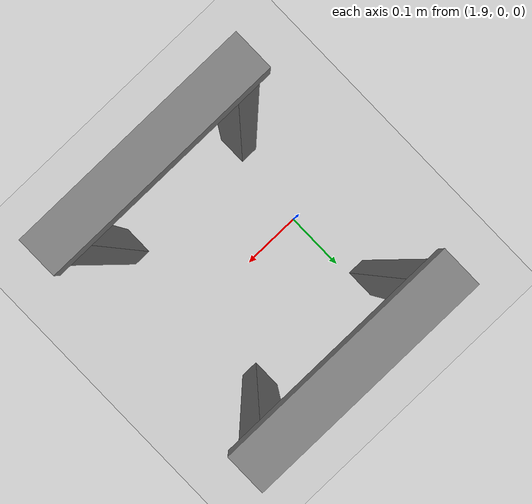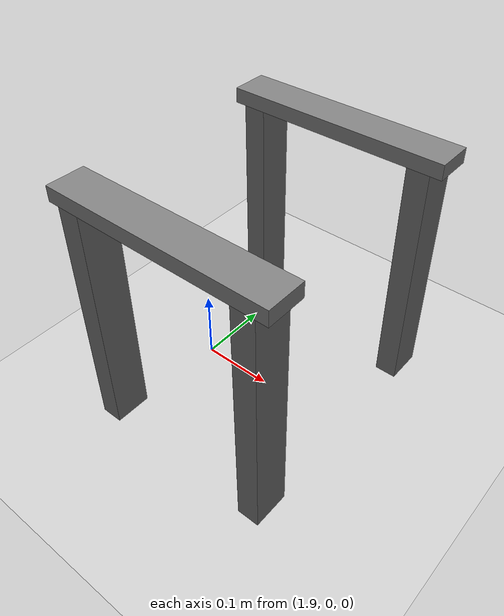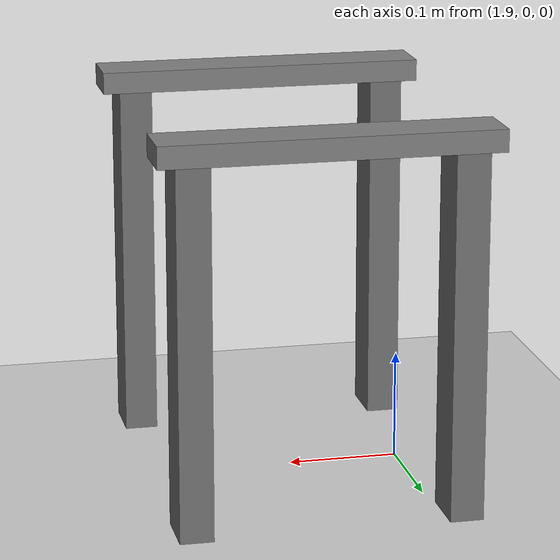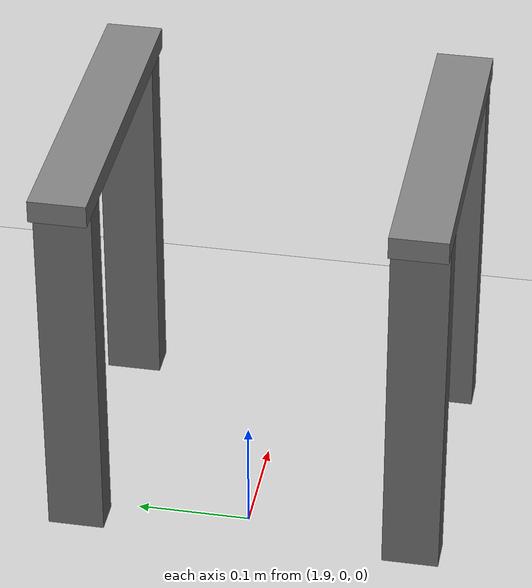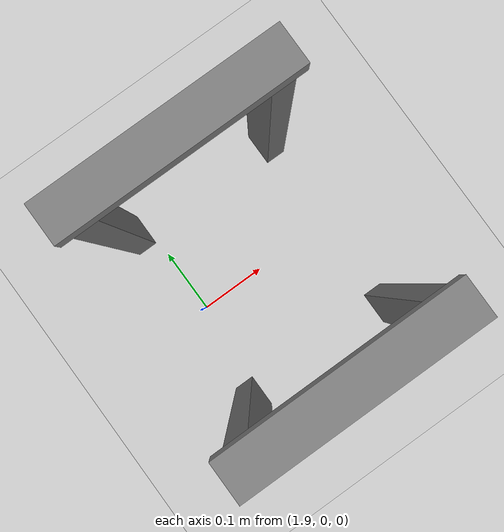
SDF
<?xml version="1.0" encoding="UTF-8"?>
<sdf version="1.9">
  <world name="default">
    <physics type="ode">
      <max_step_size>0.004</max_step_size>
      <real_time_factor>1.0</real_time_factor>
      <real_time_update_rate>250</real_time_update_rate>
    </physics>
    <gravity>0 0 -9.8</gravity>
    <magnetic_field>6e-06 2.3e-05 -4.2e-05</magnetic_field>
    <atmosphere type="adiabatic"/>
    <scene>
      <grid>false</grid>
      <ambient>0.4 0.4 0.4 1</ambient>
      <background>0.7 0.7 0.7 1</background>
      <shadows>true</shadows>
    </scene>
    <model name="ground_plane">
      <static>true</static>
      <link name="link">
        <collision name="collision">
          <geometry>
            <plane>
              <normal>0 0 1</normal>
              <size>1 1</size>
            </plane>
          </geometry>
          <surface>
            <friction>
              <ode/>
            </friction>
            <bounce/>
            <contact/>
          </surface>
        </collision>
        <visual name="visual">
          <geometry>
            <plane>
              <normal>0 0 1</normal>
              <size>500 500</size>
            </plane>
          </geometry>
          <material>
            <ambient>0.8 0.8 0.8 1</ambient>
            <diffuse>0.8 0.8 0.8 1</diffuse>
            <specular>0.8 0.8 0.8 1</specular>
          </material>
        </visual>
        <pose>0 0 0 0 -0 0</pose>
        <inertial>
          <pose>0 0 0 0 -0 0</pose>
          <mass>1</mass>
          <inertia>
            <ixx>1</ixx>
            <ixy>0</ixy>
            <ixz>0</ixz>
            <iyy>1</iyy>
            <iyz>0</iyz>
            <izz>1</izz>
          </inertia>
        </inertial>
        <enable_wind>false</enable_wind>
      </link>
      <pose>0 0 0 0 -0 0</pose>
      <self_collide>false</self_collide>
    </model>

    <!-- Landing stand for UAV: two rails with gap in middle for robot arm -->
    <model name="landing_stand">
      <static>true</static>
      <pose>2 0 0 0 0 0</pose>

      <link name="stand_link">
        <!-- Left rail (y = -0.15) - top horizontal bar -->
        <collision name="left_rail_collision">
          <pose>0 -0.15 0.34 0 0 0</pose>
          <geometry>
            <box><size>0.30 0.05 0.02</size></box>
          </geometry>
        </collision>
        <visual name="left_rail_visual">
          <pose>0 -0.15 0.34 0 0 0</pose>
          <geometry>
            <box><size>0.30 0.05 0.02</size></box>
          </geometry>
          <material>
            <ambient>0.4 0.4 0.4 1</ambient>
            <diffuse>0.5 0.5 0.5 1</diffuse>
            <specular>0.6 0.6 0.6 1</specular>
          </material>
        </visual>

        <!-- Right rail (y = +0.15) - top horizontal bar -->
        <collision name="right_rail_collision">
          <pose>0 0.15 0.34 0 0 0</pose>
          <geometry>
            <box><size>0.30 0.05 0.02</size></box>
          </geometry>
        </collision>
        <visual name="right_rail_visual">
          <pose>0 0.15 0.34 0 0 0</pose>
          <geometry>
            <box><size>0.30 0.05 0.02</size></box>
          </geometry>
          <material>
            <ambient>0.4 0.4 0.4 1</ambient>
            <diffuse>0.5 0.5 0.5 1</diffuse>
            <specular>0.6 0.6 0.6 1</specular>
          </material>
        </visual>

        <!-- Left front post -->
        <collision name="left_front_post_collision">
          <pose>0.12 -0.15 0.165 0 0 0</pose>
          <geometry>
            <box><size>0.03 0.05 0.33</size></box>
          </geometry>
        </collision>
        <visual name="left_front_post_visual">
          <pose>0.12 -0.15 0.165 0 0 0</pose>
          <geometry>
            <box><size>0.03 0.05 0.33</size></box>
          </geometry>
          <material>
            <ambient>0.35 0.35 0.35 1</ambient>
            <diffuse>0.45 0.45 0.45 1</diffuse>
            <specular>0.5 0.5 0.5 1</specular>
          </material>
        </visual>

        <!-- Left rear post -->
        <collision name="left_rear_post_collision">
          <pose>-0.12 -0.15 0.165 0 0 0</pose>
          <geometry>
            <box><size>0.03 0.05 0.33</size></box>
          </geometry>
        </collision>
        <visual name="left_rear_post_visual">
          <pose>-0.12 -0.15 0.165 0 0 0</pose>
          <geometry>
            <box><size>0.03 0.05 0.33</size></box>
          </geometry>
          <material>
            <ambient>0.35 0.35 0.35 1</ambient>
            <diffuse>0.45 0.45 0.45 1</diffuse>
            <specular>0.5 0.5 0.5 1</specular>
          </material>
        </visual>

        <!-- Right front post -->
        <collision name="right_front_post_collision">
          <pose>0.12 0.15 0.165 0 0 0</pose>
          <geometry>
            <box><size>0.03 0.05 0.33</size></box>
          </geometry>
        </collision>
        <visual name="right_front_post_visual">
          <pose>0.12 0.15 0.165 0 0 0</pose>
          <geometry>
            <box><size>0.03 0.05 0.33</size></box>
          </geometry>
          <material>
            <ambient>0.35 0.35 0.35 1</ambient>
            <diffuse>0.45 0.45 0.45 1</diffuse>
            <specular>0.5 0.5 0.5 1</specular>
          </material>
        </visual>

        <!-- Right rear post -->
        <collision name="right_rear_post_collision">
          <pose>-0.12 0.15 0.165 0 0 0</pose>
          <geometry>
            <box><size>0.03 0.05 0.33</size></box>
          </geometry>
        </collision>
        <visual name="right_rear_post_visual">
          <pose>-0.12 0.15 0.165 0 0 0</pose>
          <geometry>
            <box><size>0.03 0.05 0.33</size></box>
          </geometry>
          <material>
            <ambient>0.35 0.35 0.35 1</ambient>
            <diffuse>0.45 0.45 0.45 1</diffuse>
            <specular>0.5 0.5 0.5 1</specular>
          </material>
        </visual>
      </link>
    </model>
    <light name="sunUTC" type="directional">
      <pose>0 0 500 0 -0 0</pose>
      <cast_shadows>true</cast_shadows>
      <intensity>1</intensity>
      <direction>0.001 0.625 -0.78</direction>
      <diffuse>0.904 0.904 0.904 1</diffuse>
      <specular>0.271 0.271 0.271 1</specular>
      <attenuation>
        <range>2000</range>
        <linear>0</linear>
        <constant>1</constant>
        <quadratic>0</quadratic>
      </attenuation>
      <spot>
        <inner_angle>0</inner_angle>
        <outer_angle>0</outer_angle>
        <falloff>0</falloff>
      </spot>
    </light>
    <spherical_coordinates>
      <surface_model>EARTH_WGS84</surface_model>
      <world_frame_orientation>ENU</world_frame_orientation>
      <latitude_deg>47.397971057728974</latitude_deg>
      <longitude_deg> 8.546163739800146</longitude_deg>
      <elevation>0</elevation>
    </spherical_coordinates>
  </world>
</sdf>
